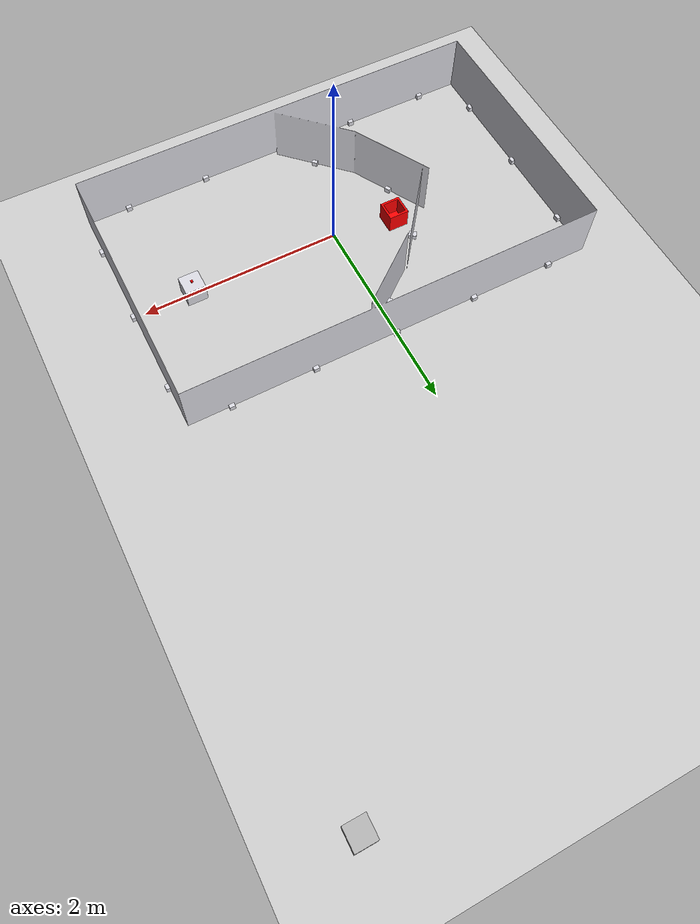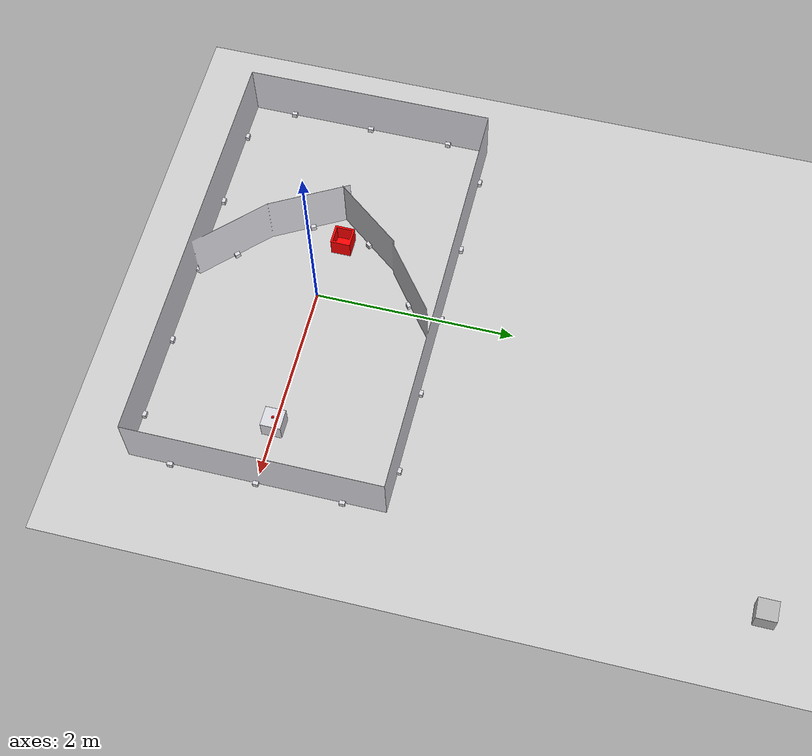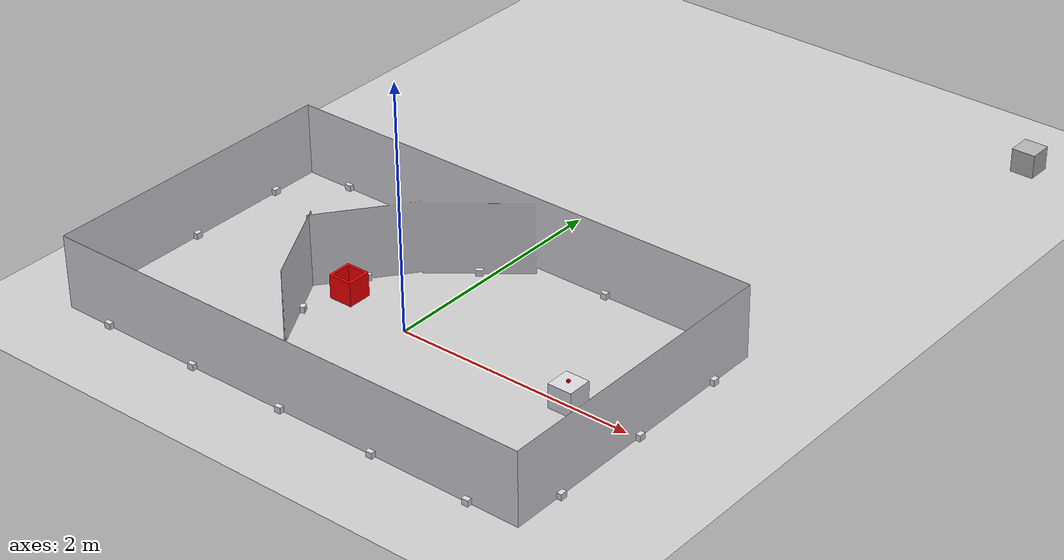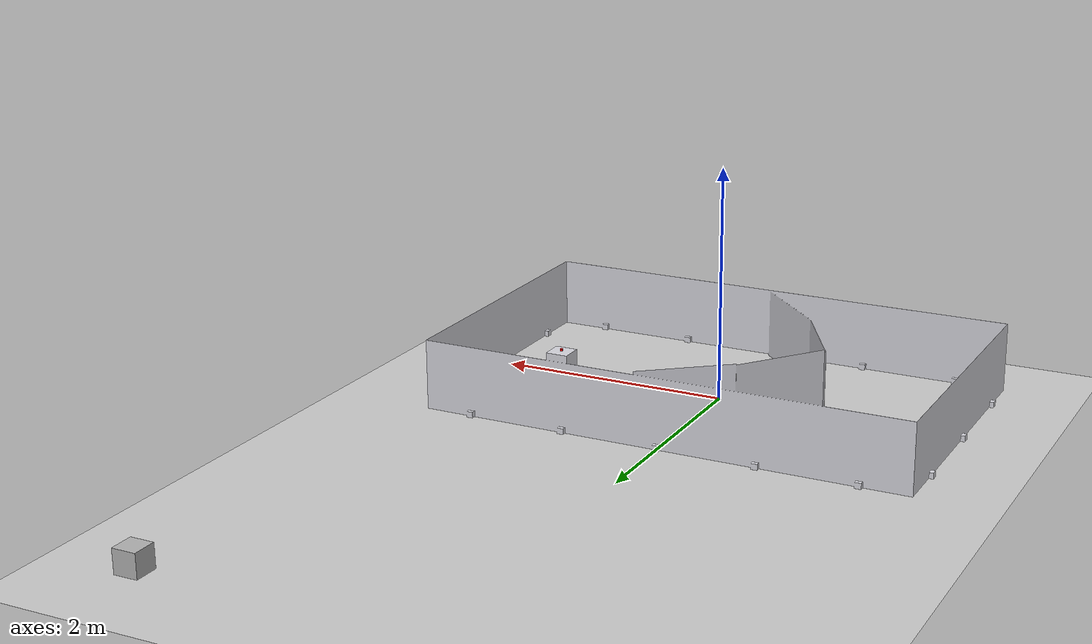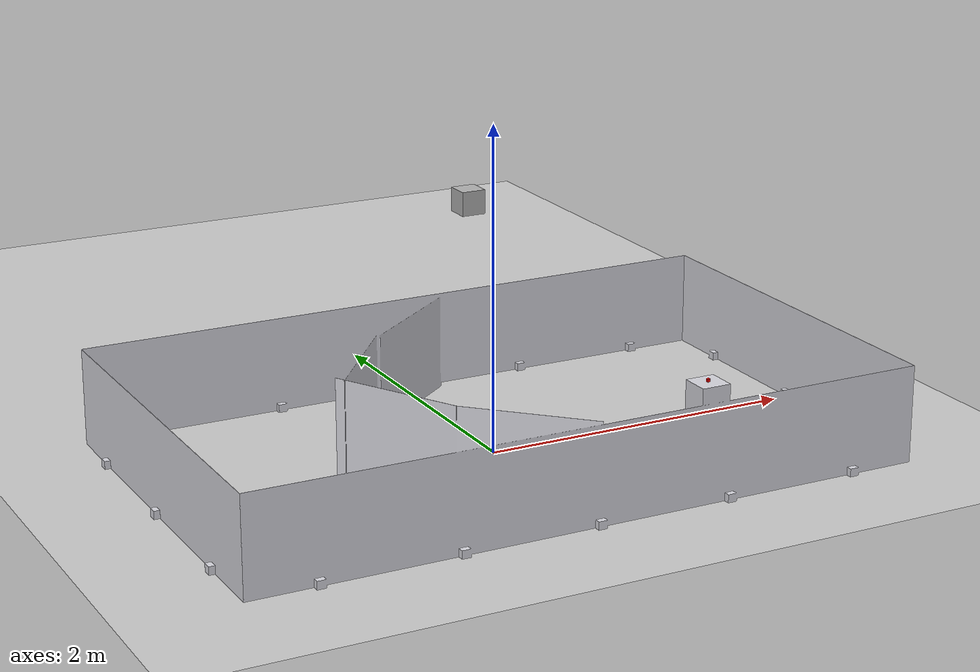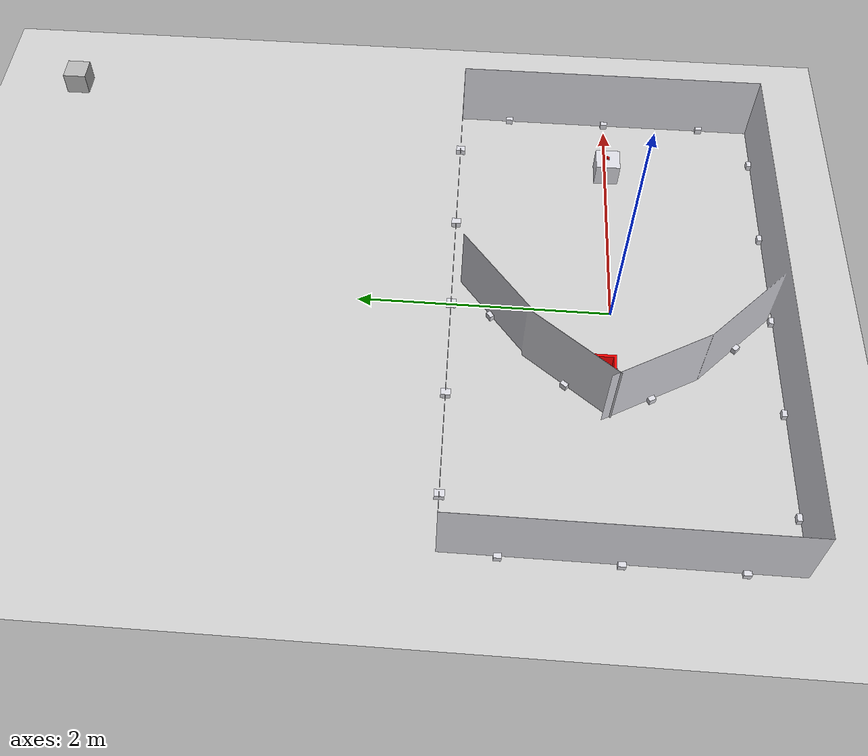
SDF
<?xml version="1.0"?>
<sdf version='1.10'>
  <world name='testspace01'>
    <gravity>0 0 -9.8000000000000007</gravity>
    <magnetic_field>6.0000000000000002e-06 2.3e-05 -4.1999999999999998e-05</magnetic_field>
    <atmosphere type='adiabatic'/>
    <plugin name='gz::sim::systems::Physics' filename='gz-sim-physics-system'/>
    <plugin name='gz::sim::systems::Sensors' filename='gz-sim-sensors-system'/>
    <plugin name='gz::sim::systems::UserCommands' filename='gz-sim-user-commands-system'/>
    <plugin name='gz::sim::systems::SceneBroadcaster' filename='gz-sim-scene-broadcaster-system'/>
    <plugin name='gz::sim::systems::Contact' filename='gz-sim-contact-system'/>
    <plugin name='gz::sim::systems::Imu' filename='gz-sim-imu-system'/>
    <physics type='ode'>
      <max_step_size>0.001</max_step_size>
      <real_time_factor>1</real_time_factor>
      <real_time_update_rate>200</real_time_update_rate>
    </physics>
    <scene>
      <ambient>0.400000006 0.400000006 0.400000006 1</ambient>
      <background>0.699999988 0.699999988 0.699999988 1</background>
      <shadows>true</shadows>
    </scene>
    <wind/>
    <spherical_coordinates>
      <surface_model>EARTH_WGS84</surface_model>
      <latitude_deg>0</latitude_deg>
      <longitude_deg>0</longitude_deg>
      <elevation>0</elevation>
      <heading_deg>0</heading_deg>
    </spherical_coordinates>
    <gui fullscreen='false'>
      <camera name='user_camera'>
        <pose>-8.1149199999999997 1.58504 8.6270199999999999 2.256344432247388e-18 0.69380199999999981 0.020204000000000007</pose>
        <view_controller>orbit</view_controller>
        <projection_type>perspective</projection_type>
      </camera>
    </gui>
    <model name='ground_plane'>
      <static>true</static>
      <link name='link'>
        <collision name='collision'>
          <geometry>
            <plane>
              <normal>0 0 1</normal>
              <size>100 100</size>
            </plane>
          </geometry>
          <surface>
            <contact>
              <collide_bitmask>65535</collide_bitmask>
              <ode/>
            </contact>
            <friction>
              <ode>
                <mu>100</mu>
                <mu2>50</mu2>
              </ode>
              <torsional>
                <ode/>
              </torsional>
            </friction>
            <bounce/>
          </surface>
          <max_contacts>10</max_contacts>
        </collision>
        <visual name='visual'>
          <cast_shadows>false</cast_shadows>
          <geometry>
            <plane>
              <normal>0 0 1</normal>
              <size>100 100</size>
            </plane>
          </geometry>
          <material>
            <script>
              <uri>file://media/materials/scripts/gazebo.material</uri>
              <name>Gazebo/Grey</name>
            </script>
          </material>
        </visual>
        <self_collide>false</self_collide>
        <enable_wind>false</enable_wind>
        <kinematic>false</kinematic>
        <pose>0 0 0 0 0 0</pose>
        <inertial>
          <pose>0 0 0 0 0 0</pose>
          <mass>1</mass>
          <inertia>
            <ixx>1</ixx>
            <ixy>0</ixy>
            <ixz>0</ixz>
            <iyy>1</iyy>
            <iyz>0</iyz>
            <izz>1</izz>
          </inertia>
        </inertial>
      </link>
      <pose>0 0 0 0 0 0</pose>
      <self_collide>false</self_collide>
    </model>
    <!-- 原 world3 中 slam_simple 的位姿；几何替换为 meshes/space01.STL -->
    <model name='space01'>
      <static>true</static>
      <pose>0 0 0 0 0 0</pose>
      <link name='link'>
        <pose>0 0 0 0 0 0</pose>
        <collision name='collision'>
          <geometry>
            <mesh>
              <uri>package://leo_custom_simulation/meshes/testmap03.STL</uri>
              <scale>0.001 0.001 0.001</scale>
            </mesh>
          </geometry>
          <surface>
            <contact>
              <ode/>
            </contact>
            <bounce/>
            <friction>
              <torsional>
                <ode/>
              </torsional>
              <ode/>
            </friction>
          </surface>
          <max_contacts>10</max_contacts>
        </collision>
        <visual name='visual'>
          <geometry>
            <mesh>
              <uri>package://leo_custom_simulation/meshes/testmap03.STL</uri>
              <scale>0.001 0.001 0.001</scale>
            </mesh>
          </geometry>
          <material>
            <ambient>0.85 0.85 0.88 1</ambient>
            <diffuse>0.85 0.85 0.88 1</diffuse>
            <specular>0.2 0.2 0.2 1</specular>
          </material>
        </visual>
        <self_collide>false</self_collide>
        <enable_wind>false</enable_wind>
        <kinematic>false</kinematic>
        <inertial>
          <pose>0 0 0 0 0 0</pose>
          <mass>1</mass>
          <inertia>
            <ixx>1</ixx>
            <ixy>0</ixy>
            <ixz>0</ixz>
            <iyy>1</iyy>
            <iyz>0</iyz>
            <izz>1</izz>
          </inertia>
        </inertial>
      </link>
      <self_collide>false</self_collide>
    </model>
    <model name='box_stl'>
    <static>true</static>
    <pose>-0.72 0 0 0 0 0</pose>
    <link name='link'>
        <pose>0 0 0 0 0 0</pose>
        <collision name='collision'>
        <geometry>
            <mesh>
            <uri>package://leo_custom_simulation/meshes/box.STL</uri>
            <scale>0.001 0.001 0.001</scale>
            </mesh>
        </geometry>
        <surface>
            <contact>
            <ode/>
            </contact>
            <bounce/>
            <friction>
            <torsional>
                <ode/>
            </torsional>
            <ode/>
            </friction>
        </surface>
        <max_contacts>10</max_contacts>
        </collision>
        <visual name='visual'>
        <geometry>
            <mesh>
            <uri>package://leo_custom_simulation/meshes/box.STL</uri>
            <scale>0.001 0.001 0.001</scale>
            </mesh>
        </geometry>
        <material>
            <!-- 环境光（整体颜色基调） -->
            <ambient>1.0 0.0 0.0 1.0</ambient>

            <!-- 漫反射（主要显示颜色） -->
            <diffuse>1.0 0.0 0.0 1.0</diffuse>

            <!-- 高光（不要太高，否则会发白） -->
            <specular>0.1 0.1 0.1 1.0</specular>

            <!-- 发光（可选，让它更亮一点） -->
            <emissive>0.1 0.0 0.0 1.0</emissive>
        </material>
        </visual>
        <self_collide>false</self_collide>
        <enable_wind>false</enable_wind>
        <kinematic>false</kinematic>
        <inertial>
        <pose>0 0 0 0 0 0</pose>
        <mass>1</mass>
        <inertia>
            <ixx>1</ixx>
            <ixy>0</ixy>
            <ixz>0</ixz>
            <iyy>1</iyy>
            <iyz>0</iyz>
            <izz>1</izz>
        </inertia>
        </inertial>
    </link>
    <self_collide>false</self_collide>
    </model>
    <model name='cylinder'>
      <!-- Replaced former cylinder with a 20x20x20 box -->
      <pose>2.2766001224517822 4.806610107421875 0.1 0 0 0</pose>
      <link name='cube20_link'>
        <inertial>
          <mass>1</mass>
          <inertia>
            <ixx>66.666666666666671</ixx>
            <ixy>0</ixy>
            <ixz>0</ixz>
            <iyy>66.666666666666671</iyy>
            <iyz>0</iyz>
            <izz>66.666666666666671</izz>
          </inertia>
          <pose>0 0 0 0 0 0</pose>
        </inertial>
        <collision name='cube20_collision'>
          <geometry>
            <box>
              <size>0.2 0.2 0.2</size>
            </box>
          </geometry>
          <surface>
            <friction>
              <ode/>
            </friction>
            <bounce/>
            <contact/>
          </surface>
        </collision>
        <visual name='cube20_visual'>
          <geometry>
            <box>
              <size>0.2 0.2 0.2</size>
            </box>
          </geometry>
          <material>
            <ambient>0.300000012 0.300000012 0.300000012 1</ambient>
            <diffuse>0.699999988 0.699999988 0.699999988 1</diffuse>
            <specular>1 1 1 1</specular>
          </material>
          <plugin name='gz::sim::systems::Label' filename='gz-sim-label-system'>
            <label>10</label>
          </plugin>
        </visual>
        <pose>0 0 0 0 0 0</pose>
        <enable_wind>false</enable_wind>
      </link>

      <static>false</static>
      <self_collide>false</self_collide>
    </model>

    <!-- Separate model so it can be picked up and re-placed -->
    <model name='red_cube'>
      <pose>1.5 0 0.21 0 0 0</pose>
      <link name='link'>
        <inertial>
          <mass>0.01</mass>
          <inertia>
            <ixx>6.6666666666666675e-07</ixx>
            <ixy>0</ixy>
            <ixz>0</ixz>
            <iyy>6.6666666666666675e-07</iyy>
            <iyz>0</iyz>
            <izz>6.6666666666666675e-07</izz>
          </inertia>
        </inertial>
        <collision name='collision'>
          <geometry>
            <box>
              <size>0.02 0.02 0.02</size>
            </box>
          </geometry>
        </collision>
        <visual name='visual'>
          <geometry>
            <box>
              <size>0.02 0.02 0.02</size>
            </box>
          </geometry>
          <material>
            <ambient>1 0 0 1</ambient>
            <diffuse>1 0 0 1</diffuse>
            <specular>0.2 0.2 0.2 1</specular>
          </material>
        </visual>
      </link>
      <static>false</static>
    </model>
    <light name='sun' type='directional'>
      <pose>0 0 10 0 0 0</pose>
      <cast_shadows>true</cast_shadows>
      <intensity>1</intensity>
      <direction>-0.5 0.10000000000000001 -0.90000000000000002</direction>
      <diffuse>0.800000012 0.800000012 0.800000012 1</diffuse>
      <specular>0.200000003 0.200000003 0.200000003 1</specular>
      <attenuation>
        <range>1000</range>
        <linear>0.01</linear>
        <constant>0.90000000000000002</constant>
        <quadratic>0.001</quadratic>
      </attenuation>
      <spot>
        <inner_angle>0</inner_angle>
        <outer_angle>0</outer_angle>
        <falloff>0</falloff>
      </spot>
    </light>
  </world>
</sdf>
